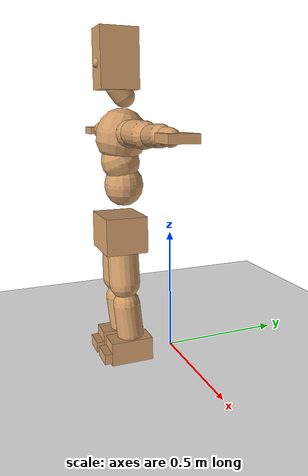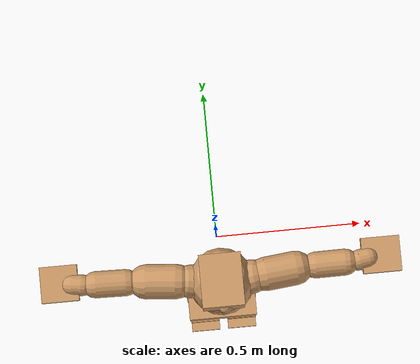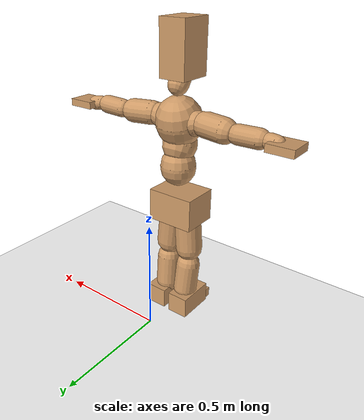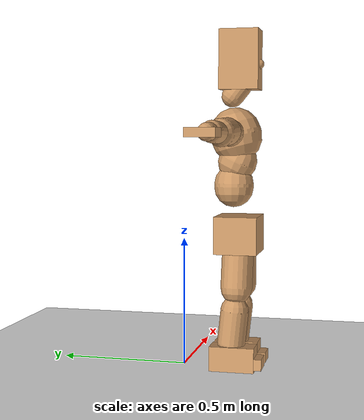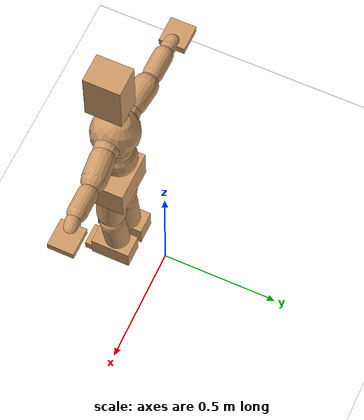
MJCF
<mujoco model="humanoid">
  <option integrator="implicitfast" />

  <visual>
    <global offwidth="1280" offheight="960" />
    <headlight active="1" ambient="0.34 0.34 0.34" diffuse="0.5 0.5 0.5" />
  </visual>

  <default>
    <joint damping="2" stiffness="2" armature="0.01" limited="true" solimplimit="0 .99 .01" />
    <geom condim="1" friction="0.7 0.005 0.0001" solimp=".99 .99 .003" solref="0.015 1" margin="0.001" rgba="0.8 0.6 .4 1" />
    <default class="smplcontact">
      <geom condim="3" friction="1. 0.005 0.0001" solref="0.015 1" solimp="0.98 0.98 0.001" priority="1" />
    </default>
    <default class="stiff_medium">
      <joint stiffness="10" />
    </default>
    <default class="stiff_medium_higher">
      <joint stiffness="50" />
    </default>
    <default class="stiff_high">
      <joint stiffness="100" />
    </default>
  </default>

  <asset>
    <texture type="skybox" builtin="gradient" rgb1="0.99 0.99 0.99" rgb2="0.608 0.828 0.892" width="100" />
    <texture builtin="flat" height="1278" mark="cross" markrgb="1 1 1" name="texgeom" random="0.01" rgb1="0.8 0.6 0.4" rgb2="0.8 0.6 0.4" type="cube" width="127" />
    <texture name="texplane" type="2d" builtin="checker" markrgb="1 1 1" rgb1="0.756 0.772 0.76" rgb2="0.6 0.6 0.6" width="100" height="100" />
    <material name="MatPlane" reflectance="0.5" texture="texplane" texrepeat="1 1" texuniform="true" />
    <material name="geom" texture="texgeom" texuniform="true" />
  </asset>

  <worldbody>
    <light name="tracking_light" pos="0 0 7" dir="0 0 -1" directional="true" cutoff="100" exponent="1" diffuse="1 1 1" specular="0.1 0.1 0.1" mode="trackcom" />
    <camera name="back" pos="0 3 2.4" xyaxes="-1 0 0 0 -1 2" mode="trackcom" />
    <camera name="side" pos="-3 0 2.4" xyaxes="0 -1 0 1 0 2" mode="trackcom" />
    <camera name="front_side" pos="-2.8 -2.8 0.8" xyaxes="0.5 -0.5 0 0.1 0.1 1" mode="trackcom" />
    <geom condim="3" name="floor" pos="0 0 0" rgba="1 1 1 1" size="100 100 .2" type="plane" material="MatPlane" />
    <body name="Pelvis" pos="-0.0018 -0.2233 0.536695" euler="90 0 0">
      <site name="Pelvis" size="0.01" />
      <freejoint name="Pelvis" />
      <geom type="box" pos="-0.0000 -0.0121 -0.0055" size="0.1069 0.0722 0.083" quat="1.0000 0.0000 0.0000 0.0000" density="3165.830099" name="Pelvis" />
      <body name="L_Hip" pos="0.038225 -0.05027 -0.00374">
        <joint name="L_Hip_x" type="hinge" pos="0 0 0" axis="1 0 0" stiffness="3.8448450000000003" range="-160.0 22.92" class="stiff_medium" damping="4.4892046838453" armature="0.002329579093676348"/>
        <joint name="L_Hip_y" type="hinge" pos="0 0 0" axis="0 1 0" stiffness="3.8941309183673467" range="-70.0 70.0" class="stiff_medium" damping="4.474611116630914" armature="0.005141620830116169"/>
        <joint name="L_Hip_z" type="hinge" pos="0 0 0" axis="0 0 1" stiffness="3.8899115306122445" range="-28.65 90.0" class="stiff_medium" damping="3.007292158377348" armature="0.0023249387690867248"/>
        <geom type="capsule" density="2040.816327" fromto="0.003795 -0.04125 -0.000495 0.01507 -0.16511 -0.00198" size="0.0615" name="L_Hip" />
        <body name="L_Knee" pos="0.018865 -0.20636 -0.002475">
          <joint name="L_Knee_x" type="hinge" pos="0 0 0" axis="1 0 0" range="-5.16 171.89" damping="2.6389822347590104" armature="0.002636412166748132" stiffness="0.8254858775510204"/>
          <joint name="L_Knee_y" type="hinge" pos="0 0 0" axis="0 1 0" range="-4.58 6.88" damping="3.8249964866329913" armature="0.005767402564678587" stiffness="0.7927419426834563"/>
          <joint name="L_Knee_z" type="hinge" pos="0 0 0" axis="0 0 1" range="-6.88 4.58" damping="2.6552280987004853" armature="0.002610997265955112" stiffness="0.8438150659013607"/>
          <geom type="capsule" density="1234.567901" fromto="-0.001485 -0.04378 -0.004785 -0.005995 -0.17512 -0.01925" size="0.0541" name="L_Knee" />
          <body name="L_Ankle" pos="-0.00748 -0.2189 -0.024035">
            <joint name="L_Ankle_x" type="hinge" pos="0 0 0" axis="1 0 0" range="-45.84 45.84" class="stiff_medium" damping="3.273596845617011" armature="0.005412341569511943" stiffness="5.499999999999999"/>
            <joint name="L_Ankle_y" type="hinge" pos="0 0 0" axis="0 1 0" range="-74.48 22.92" class="stiff_medium" damping="1.6624052515410668" armature="0.0055830125663662985" stiffness="5.499999999999999"/>
            <joint name="L_Ankle_z" type="hinge" pos="0 0 0" axis="0 0 1" range="-4.58 4.58" class="stiff_medium" damping="3.6423407751672325" armature="0.006700326425477696" stiffness="5.499999999999999"/>
            <geom type="box" pos="0.012815 -0.013145 0.01331" size="0.0483 0.0464 0.085" quat="1.0000 0.0000 0.0000 0.0000" density="449.071558" name="L_Ankle" class="smplcontact" />
            <body name="L_Toe" pos="0.01452 -0.03069 0.065615">
              <joint name="L_Toe_x" type="hinge" pos="0 0 0" axis="1 0 0" range="-91.67 22.92" armature="0.007348189317791214" damping="1.2714565072837005" stiffness="1.0999999999999999"/>
              <joint name="L_Toe_y" type="hinge" pos="0 0 0" axis="0 1 0" range="-4.58 4.58" armature="0.008131585292186893" damping="1.3375158930947761" stiffness="1.0999999999999999"/>
              <joint name="L_Toe_z" type="hinge" pos="0 0 0" axis="0 0 1" range="-4.58 4.58" armature="0.009715569786320193" damping="1.4619936227598402" stiffness="1.0999999999999999"/>
              <geom type="box" pos="-0.00165 0.003025 0.01364" size="0.0478 0.02 0.0496" quat="1.0000 0.0000 0.0000 0.0000" density="423.206892" name="L_Toe" class="smplcontact" />
            </body>
          </body>
        </body>
      </body>
      <body name="R_Hip" pos="-0.037235 -0.049775 -0.002365">
        <joint name="R_Hip_x" type="hinge" pos="0 0 0" axis="1 0 0" stiffness="3.8448450000000003" range="-160.0 22.92" class="stiff_medium" damping="4.4892046838453" armature="0.002329579093676348"/>
        <joint name="R_Hip_y" type="hinge" pos="0 0 0" axis="0 1 0" stiffness="3.8941309183673467" range="-70.0 70.0" class="stiff_medium" damping="4.474611116630914" armature="0.005141620830116169"/>
        <joint name="R_Hip_z" type="hinge" pos="0 0 0" axis="0 0 1" stiffness="3.8899115306122445" range="-90.0 28.65" class="stiff_medium" damping="3.007292158377348" armature="0.0023249387690867248"/>
        <geom type="capsule" density="2040.816327" fromto="-0.004235 -0.042075 -0.00099 -0.01683 -0.168355 -0.003905" size="0.0606" name="R_Hip" />
        <body name="R_Knee" pos="-0.021065 -0.21043 -0.004895">
          <joint name="R_Knee_x" type="hinge" pos="0 0 0" axis="1 0 0" range="-5.16 171.89" damping="2.6389822347590104" armature="0.002636412166748132" stiffness="0.8254858775510204"/>
          <joint name="R_Knee_y" type="hinge" pos="0 0 0" axis="0 1 0" range="-6.88 4.58" damping="3.8249964866329913" armature="0.005767402564678587" stiffness="0.7927419426834563"/>
          <joint name="R_Knee_z" type="hinge" pos="0 0 0" axis="0 0 1" range="-4.58 6.88" damping="2.6552280987004853" armature="0.002610997265955112" stiffness="0.8438150659013607"/>
          <geom type="capsule" density="1234.567901" fromto="0.00176 -0.043835 -0.004675 0.00693 -0.175285 -0.01859" size="0.0541" name="R_Knee" />
          <body name="R_Ankle" pos="0.00869 -0.21912 -0.023265">
            <joint name="R_Ankle_x" type="hinge" pos="0 0 0" axis="1 0 0" range="-45.84 45.84" class="stiff_medium" damping="3.273596845617011" armature="0.005412341569511943" stiffness="5.499999999999999"/>
            <joint name="R_Ankle_y" type="hinge" pos="0 0 0" axis="0 1 0" range="-22.92 74.48" class="stiff_medium" damping="1.6624052515410668" armature="0.0055830125663662985" stiffness="5.499999999999999"/>
            <joint name="R_Ankle_z" type="hinge" pos="0 0 0" axis="0 0 1" range="-4.58 4.58" class="stiff_medium" damping="3.6423407751672325" armature="0.006700326425477696" stiffness="5.499999999999999"/>
            <geom type="box" pos="-0.01166 -0.00957 0.01408" size="0.0483 0.0478 0.0865" quat="1.0000 0.0000 0.0000 0.0000" density="434.700981" name="R_Ankle" class="smplcontact" />
            <body name="R_Toe" pos="-0.01397 -0.026455 0.067815">
              <joint name="R_Toe_x" type="hinge" pos="0 0 0" axis="1 0 0" range="-91.67 22.92" armature="0.007348189317791214" damping="1.2714565072837005" stiffness="1.0999999999999999"/>
              <joint name="R_Toe_y" type="hinge" pos="0 0 0" axis="0 1 0" range="-4.58 4.58" armature="0.008131585292186893" damping="1.3375158930947761" stiffness="1.0999999999999999"/>
              <joint name="R_Toe_z" type="hinge" pos="0 0 0" axis="0 0 1" range="-4.58 4.58" armature="0.009715569786320193" damping="1.4619936227598402" stiffness="1.0999999999999999"/>
              <geom type="box" pos="0.00231 0.002475 0.012485" size="0.0479 0.0216 0.0493" quat="1.0000 0.0000 0.0000 0.0000" density="407.384095" name="R_Toe" class="smplcontact" />
            </body>
          </body>
        </body>
      </body>
      <body name="Torso" pos="-0.0025 0.109 -0.0267">
        <joint name="Torso_x" type="hinge" pos="0 0 0" axis="1 0 0" range="-25.78 57.3" class="stiff_medium" damping="13.033002694201473" armature="0.008529707903221754" stiffness="8.850591428571427"/>
        <joint name="Torso_y" type="hinge" pos="0 0 0" axis="0 1 0" range="-57.3 57.3" class="stiff_high" damping="10.593455725366077" armature="0.003117886410852223" stiffness="89.98187346938776"/>
        <joint name="Torso_z" type="hinge" pos="0 0 0" axis="0 0 1" range="-34.38 34.38" class="stiff_high" damping="15.65290421493559" armature="0.006670903974053502" stiffness="91.82166739130435"/>
        <geom type="capsule" density="2040.816327" fromto="0.0025 0.0608 0.0005 0.003 0.0743 0.0006" size="0.0769" name="Torso" />
        <body name="Spine" pos="0.0055 0.1352 0.0011">
          <joint name="Spine_x" type="hinge" pos="0 0 0" axis="1 0 0" stiffness="8.668092916666668" range="-25.78 57.3" class="stiff_medium" damping="12.799332930126958" armature="0.008399793230500953"/>
          <joint name="Spine_y" type="hinge" pos="0 0 0" axis="0 1 0" stiffness="8.803882608695652" range="-57.3 57.3" class="stiff_high" damping="4.158509374794197" armature="0.0030691714718519866"/>
          <joint name="Spine_z" type="hinge" pos="0 0 0" axis="0 0 1" stiffness="17.094745777777778" range="-34.38 34.38" class="stiff_high" damping="8.174908875734488" armature="0.005429635774519409"/>
          <geom type="capsule" density="2040.816327" fromto="0.0007 0.0238 0.0114 0.0008 0.0291 0.014" size="0.0755" name="Spine" />
          <body name="Chest" pos="0.0015 0.0529 0.0254">
            <joint name="Chest_x" type="hinge" pos="0 0 0" axis="1 0 0" stiffness="8.321563555555556" range="-25.78 57.3" class="stiff_medium" damping="12.501415588099173" armature="0.008347009985322682"/>
            <joint name="Chest_y" type="hinge" pos="0 0 0" axis="0 1 0" stiffness="7.107709062500001" range="-57.3 57.3" class="stiff_high" damping="3.7207337182807376" armature="0.003043319602134285"/>
            <joint name="Chest_z" type="hinge" pos="0 0 0" axis="0 0 1" stiffness="16.955583255813952" range="-34.38 34.38" class="stiff_high" damping="7.7291030796865465" armature="0.004893425362142385"/>
            <geom type="capsule" density="2040.816327" fromto="-0.0009 0.0682 -0.0173 -0.001 0.0833 -0.0212" size="0.1002" name="Chest" />
            <body name="Neck" pos="-0.0028 0.2139 -0.0429">
              <joint name="Neck_x" type="hinge" pos="0 0 0" axis="1 0 0" range="-28.65 57.3" class="stiff_medium_higher" damping="10.000000000000009" armature="0.010000000000000021" stiffness="50.0"/>
              <joint name="Neck_y" type="hinge" pos="0 0 0" axis="0 1 0" range="-40.11 40.11" class="stiff_medium_higher" damping="10.0" armature="0.01" stiffness="50.0"/>
              <joint name="Neck_z" type="hinge" pos="0 0 0" axis="0 0 1" range="-40.11 40.11" class="stiff_medium_higher" damping="9.999999999999998" armature="0.009999999999999998" stiffness="50.0"/>
              <geom type="capsule" density="1000" fromto="0.001 0.013 0.0103 0.0041 0.052 0.0411" size="0.0436" name="Neck" />
              <body name="Head" pos="0.0052 0.065 0.0513">
                <joint name="Head_x" type="hinge" pos="0 0 0" axis="1 0 0" range="-28.65 57.3" class="stiff_medium_higher" damping="2.000000000000005" armature="0.010000000000000049" stiffness="50.0"/>
                <joint name="Head_y" type="hinge" pos="0 0 0" axis="0 1 0" range="-40.11 40.11" class="stiff_medium_higher" damping="2.0" armature="0.01" stiffness="50.0"/>
                <joint name="Head_z" type="hinge" pos="0 0 0" axis="0 0 1" range="-40.11 40.11" class="stiff_medium_higher" damping="2.000000000000001" armature="0.010000000000000009" stiffness="50.0"/>
                <geom type="box" pos="-0.0042 0.0876 -0.0116" size="0.0606 0.1154 0.076" quat="1.0000 0.0000 0.0000 0.0000" density="1018.069894" name="Head" />
                <geom type="capsule" name="nose" size="0.02 0.01" pos="0 0.07 0.05" quat="1 0 0 0" mass="0" contype="0" conaffinity="0" />
              </body>
            </body>
            <body name="L_Thorax" pos="0.04728 0.07302 -0.02046">
              <joint name="L_Thorax_x" type="hinge" pos="0 0 0" axis="1 0 0" range="-10.89 4.58" class="stiff_medium_higher" damping="9.422378486615749" armature="0.004891954247567088" stiffness="22.685518877551026"/>
              <joint name="L_Thorax_y" type="hinge" pos="0 0 0" axis="0 1 0" range="-28.65 17.19" class="stiff_medium_higher" damping="7.1269625368313445" armature="0.002837019223865551" stiffness="22.379824999999997"/>
              <joint name="L_Thorax_z" type="hinge" pos="0 0 0" axis="0 0 1" range="-31.51 40.11" class="stiff_medium_higher" damping="7.125098806142248" armature="0.0028351076954015067" stiffness="22.383203061224492"/>
              <geom type="capsule" density="1000" fromto="0.01092 0.00366 -0.00108 0.04368 0.01464 -0.00426" size="0.0521" name="L_Thorax" />
              <body name="L_Shoulder" pos="0.0546 0.0183 -0.00534">
                <joint name="L_Shoulder_x" type="hinge" pos="0 0 0" axis="1 0 0" range="-97.4 97.4" class="stiff_medium" damping="3.0459299294114324" armature="0.005624379912182247" stiffness="4.58208"/>
                <joint name="L_Shoulder_y" type="hinge" pos="0 0 0" axis="0 1 0" range="-108.86 80.21" class="stiff_medium" damping="2.1612614426703196" armature="0.0028841969954109536" stiffness="4.498701632653061"/>
                <joint name="L_Shoulder_z" type="hinge" pos="0 0 0" axis="0 0 1" range="-97.4 85.94" class="stiff_medium" damping="2.1614166173229705" armature="0.0028814609097421572" stiffness="4.503620000000001"/>
                <geom type="capsule" density="1000" fromto="0.03114 -0.00156 -0.0033 0.12462 -0.00612 -0.0132" size="0.0517" name="L_Shoulder" />
                <body name="L_Elbow" pos="0.15576 -0.00768 -0.0165">
                  <joint name="L_Elbow_x" type="hinge" pos="0 0 0" axis="1 0 0" range="-17.19 4.58" damping="2.874578640438173" armature="0.006949922042669661" stiffness="0.9511706530612245"/>
                  <joint name="L_Elbow_y" type="hinge" pos="0 0 0" axis="0 1 0" range="-180.0 17.19" damping="1.925552810921087" armature="0.0031210824799741445" stiffness="0.9503763265306122"/>
                  <joint name="L_Elbow_z" type="hinge" pos="0 0 0" axis="0 0 1" range="-100.84 4.58" damping="1.9224833578346185" armature="0.0031067220005513907" stiffness="0.951727836734694"/>
                  <geom type="capsule" density="1000" fromto="0.02988 0.00108 -0.00012 0.11964 0.00432 -0.00054" size="0.0405" name="L_Elbow" />
                  <body name="L_Wrist" pos="0.14952 0.0054 -0.00072">
                    <joint name="L_Wrist_x" type="hinge" pos="0 0 0" axis="1 0 0" range="-180.0 22.92" armature="0.007694148983561405" damping="1.3087654319433288" stiffness="1.1130970816326529"/>
                    <joint name="L_Wrist_y" type="hinge" pos="0 0 0" axis="0 1 0" range="-17.19 17.19" armature="0.004175371060450671" damping="0.9585763805132095" stiffness="1.1003437346938774"/>
                    <joint name="L_Wrist_z" type="hinge" pos="0 0 0" axis="0 0 1" range="-22.92 22.92" armature="0.003969908434642842" damping="0.9368762271945053" stiffness="1.1054877959183673"/>
                    <geom type="capsule" density="1000" fromto="0.01008 -0.00096 -0.0018 0.04032 -0.0039 -0.0072" size="0.0318" name="L_Wrist" class="smplcontact" />
                    <body name="L_Hand" pos="0.0504 -0.00492 -0.00894">
                      <joint name="L_Hand_x" type="hinge" pos="0 0 0" axis="1 0 0" range="-17.19 17.19" armature="0.009721176572668043" damping="1.527443084844843" stiffness="1.2000000000000002"/>
                      <joint name="L_Hand_y" type="hinge" pos="0 0 0" axis="0 1 0" range="-51.57 51.57" armature="0.006628015324670781" damping="1.261238945609034" stiffness="1.2000000000000002"/>
                      <joint name="L_Hand_z" type="hinge" pos="0 0 0" axis="0 0 1" range="-91.67 91.67" armature="0.00580349093190332" damping="1.1801855039174125" stiffness="1.2000000000000002"/>
                      <geom type="box" pos="0.02958 0.0006 -0.00348" size="0.0585 0.0158 0.0538" quat="1.0000 0.0000 0.0000 0.0000" density="400.552564" name="L_Hand" class="smplcontact" />
                    </body>
                  </body>
                </body>
              </body>
            </body>
            <body name="R_Thorax" pos="-0.04908 0.07128 -0.02316">
              <joint name="R_Thorax_x" type="hinge" pos="0 0 0" axis="1 0 0" range="-10.89 4.58" class="stiff_medium_higher" damping="9.422378486615749" armature="0.004891954247567088" stiffness="22.685518877551026"/>
              <joint name="R_Thorax_y" type="hinge" pos="0 0 0" axis="0 1 0" range="-17.19 28.65" class="stiff_medium_higher" damping="7.1269625368313445" armature="0.002837019223865551" stiffness="22.379824999999997"/>
              <joint name="R_Thorax_z" type="hinge" pos="0 0 0" axis="0 0 1" range="-40.11 31.51" class="stiff_medium_higher" damping="7.125098806142248" armature="0.0028351076954015067" stiffness="22.383203061224492"/>
              <geom type="capsule" density="1000" fromto="-0.01152 0.0039 -0.00108 -0.04608 0.0156 -0.00438" size="0.0511" name="R_Thorax" />
              <body name="R_Shoulder" pos="-0.0576 0.01956 -0.00546">
                <joint name="R_Shoulder_x" type="hinge" pos="0 0 0" axis="1 0 0" range="-97.4 97.4" class="stiff_medium" damping="3.0459299294114324" armature="0.005624379912182247" stiffness="4.58208"/>
                <joint name="R_Shoulder_y" type="hinge" pos="0 0 0" axis="0 1 0" range="-80.21 108.86" class="stiff_medium" damping="2.1612614426703196" armature="0.0028841969954109536" stiffness="4.498701632653061"/>
                <joint name="R_Shoulder_z" type="hinge" pos="0 0 0" axis="0 0 1" range="-85.94 97.4" class="stiff_medium" damping="2.1614166173229705" armature="0.0028814609097421572" stiffness="4.503620000000001"/>
                <geom type="capsule" density="1000" fromto="-0.03042 -0.00162 -0.00258 -0.1218 -0.00642 -0.01026" size="0.0531" name="R_Shoulder" />
                <body name="R_Elbow" pos="-0.15222 -0.00798 -0.01284">
                  <joint name="R_Elbow_x" type="hinge" pos="0 0 0" axis="1 0 0" range="-17.19 4.58" damping="2.874578640438173" armature="0.006949922042669661" stiffness="0.9511706530612245"/>
                  <joint name="R_Elbow_y" type="hinge" pos="0 0 0" axis="0 1 0" range="-17.19 180.0" damping="1.925552810921087" armature="0.0031210824799741445" stiffness="0.9503763265306122"/>
                  <joint name="R_Elbow_z" type="hinge" pos="0 0 0" axis="0 0 1" range="-4.58 100.84" damping="1.9224833578346185" armature="0.0031067220005513907" stiffness="0.951727836734694"/>
                  <geom type="capsule" density="1000" fromto="-0.03066 0.00096 -0.00066 -0.12252 0.00372 -0.00264" size="0.0408" name="R_Elbow" />
                  <body name="R_Wrist" pos="-0.15318 0.00468 -0.00336">
                    <joint name="R_Wrist_x" type="hinge" pos="0 0 0" axis="1 0 0" range="-180.0 22.92" armature="0.007694148983561405" damping="1.3087654319433288" stiffness="1.1130970816326529"/>
                    <joint name="R_Wrist_y" type="hinge" pos="0 0 0" axis="0 1 0" range="-17.19 17.19" armature="0.004175371060450671" damping="0.9585763805132095" stiffness="1.1003437346938774"/>
                    <joint name="R_Wrist_z" type="hinge" pos="0 0 0" axis="0 0 1" range="-22.92 22.92" armature="0.003969908434642842" damping="0.9368762271945053" stiffness="1.1054877959183673"/>
                    <geom type="capsule" density="1000" fromto="-0.01014 -0.00072 -0.00126 -0.04062 -0.00294 -0.00498" size="0.0326" name="R_Wrist" class="smplcontact" />
                    <body name="R_Hand" pos="-0.05076 -0.00366 -0.00618">
                      <joint name="R_Hand_x" type="hinge" pos="0 0 0" axis="1 0 0" range="-17.19 17.19" armature="0.009721176572668043" damping="1.527443084844843" stiffness="1.2000000000000002"/>
                      <joint name="R_Hand_y" type="hinge" pos="0 0 0" axis="0 1 0" range="-51.57 51.57" armature="0.006628015324670781" damping="1.261238945609034" stiffness="1.2000000000000002"/>
                      <joint name="R_Hand_z" type="hinge" pos="0 0 0" axis="0 0 1" range="-91.67 91.67" armature="0.00580349093190332" damping="1.1801855039174125" stiffness="1.2000000000000002"/>
                      <geom type="box" pos="-0.02772 -0.00054 -0.00474" size="0.0569 0.0164 0.0546" quat="1.0000 0.0000 0.0000 0.0000" density="403.679611" name="R_Hand" class="smplcontact" />
                    </body>
                  </body>
                </body>
              </body>
            </body>
          </body>
        </body>
      </body>
    </body>
  </worldbody>
  <actuator>
    <general name="L_Hip_x" joint="L_Hip_x" biastype="affine" gainprm="110.47395602942699" biasprm="-82.78903286963619 -69.20721 -0.5985606245127068" ctrllimited="true" ctrlrange="-1 1" forcerange="-138.41442 138.41442" />
    <general name="L_Hip_y" joint="L_Hip_y" biastype="affine" gainprm="85.6364115968181" biasprm="0.0 -70.09435653061225 -0.8949222233261829" ctrllimited="true" ctrlrange="-1 1" forcerange="-140.1887130612245 140.1887130612245" />
    <general name="L_Hip_z" joint="L_Hip_z" biastype="affine" gainprm="72.49821999569515" biasprm="37.48643739347575 -70.0184075510204 -0.6014584316754696" ctrllimited="true" ctrlrange="-1 1" forcerange="-140.0368151020408 140.0368151020408" />
    <general name="L_Knee_x" joint="L_Knee_x" biastype="affine" gainprm="114.78772806322807" biasprm="108.09690991235253 -74.29372897959183 -0.6597455586897526" ctrllimited="true" ctrlrange="-1 1" forcerange="-148.58745795918367 148.58745795918367" />
    <general name="L_Knee_y" joint="L_Knee_y" biastype="affine" gainprm="7.1352030344314175" biasprm="1.432021551412937 -71.34677484151106 -0.9562491216582478" ctrllimited="true" ctrlrange="-1 1" forcerange="-142.69354968302213 142.69354968302213" />
    <general name="L_Knee_z" joint="L_Knee_z" biastype="affine" gainprm="7.594895002449052" biasprm="-1.5242808469138587 -75.94335593112247 -0.6638070246751213" ctrllimited="true" ctrlrange="-1 1" forcerange="-151.88671186224494 151.88671186224494" />
    <general name="L_Ankle_x" joint="L_Ankle_x" biastype="affine" gainprm="39.60291699115293" biasprm="0.0 -49.49999999999999 -1.0911989485390037" ctrllimited="true" ctrlrange="-1 1" forcerange="-98.99999999999999 98.99999999999999" />
    <general name="L_Ankle_y" joint="L_Ankle_y" biastype="affine" gainprm="42.0737796132013" biasprm="-22.27232111762484 -49.49999999999999 -1.1082701676940445" ctrllimited="true" ctrlrange="-1 1" forcerange="-98.99999999999999 98.99999999999999" />
    <general name="L_Ankle_z" joint="L_Ankle_z" biastype="affine" gainprm="3.9568359471963435" biasprm="0.0 -49.49999999999999 -1.2141135917224108" ctrllimited="true" ctrlrange="-1 1" forcerange="-98.99999999999999 98.99999999999999" />
    <general name="L_Toe_x" joint="L_Toe_x" biastype="affine" gainprm="39.599461239233975" biasprm="-23.758294442772804 -39.599999999999994 -0.5085826029134802" ctrllimited="true" ctrlrange="-1 1" forcerange="-79.19999999999999 79.19999999999999" />
    <general name="L_Toe_y" joint="L_Toe_y" biastype="affine" gainprm="3.165468757757075" biasprm="0.0 -39.599999999999994 -0.5350063572379105" ctrllimited="true" ctrlrange="-1 1" forcerange="-79.19999999999999 79.19999999999999" />
    <general name="L_Toe_z" joint="L_Toe_z" biastype="affine" gainprm="3.165468757757075" biasprm="0.0 -39.599999999999994 -0.5847974491039362" ctrllimited="true" ctrlrange="-1 1" forcerange="-79.19999999999999 79.19999999999999" />
    <general name="R_Hip_x" joint="R_Hip_x" biastype="affine" gainprm="110.47395602942699" biasprm="-82.78903286963619 -69.20721 -0.5985606245127068" ctrllimited="true" ctrlrange="-1 1" forcerange="-138.41442 138.41442" />
    <general name="R_Hip_y" joint="R_Hip_y" biastype="affine" gainprm="85.6364115968181" biasprm="0.0 -70.09435653061225 -0.8949222233261829" ctrllimited="true" ctrlrange="-1 1" forcerange="-140.1887130612245 140.1887130612245" />
    <general name="R_Hip_z" joint="R_Hip_z" biastype="affine" gainprm="72.49821999569515" biasprm="-37.48643739347575 -70.0184075510204 -0.6014584316754696" ctrllimited="true" ctrlrange="-1 1" forcerange="-140.0368151020408 140.0368151020408" />
    <general name="R_Knee_x" joint="R_Knee_x" biastype="affine" gainprm="114.78772806322807" biasprm="108.09690991235253 -74.29372897959183 -0.6597455586897526" ctrllimited="true" ctrlrange="-1 1" forcerange="-148.58745795918367 148.58745795918367" />
    <general name="R_Knee_y" joint="R_Knee_y" biastype="affine" gainprm="7.1352030344314175" biasprm="-1.432021551412937 -71.34677484151106 -0.9562491216582478" ctrllimited="true" ctrlrange="-1 1" forcerange="-142.69354968302213 142.69354968302213" />
    <general name="R_Knee_z" joint="R_Knee_z" biastype="affine" gainprm="7.594895002449052" biasprm="1.5242808469138587 -75.94335593112247 -0.6638070246751213" ctrllimited="true" ctrlrange="-1 1" forcerange="-151.88671186224494 151.88671186224494" />
    <general name="R_Ankle_x" joint="R_Ankle_x" biastype="affine" gainprm="39.60291699115293" biasprm="0.0 -49.49999999999999 -1.0911989485390037" ctrllimited="true" ctrlrange="-1 1" forcerange="-98.99999999999999 98.99999999999999" />
    <general name="R_Ankle_y" joint="R_Ankle_y" biastype="affine" gainprm="42.0737796132013" biasprm="22.27232111762484 -49.49999999999999 -1.1082701676940445" ctrllimited="true" ctrlrange="-1 1" forcerange="-98.99999999999999 98.99999999999999" />
    <general name="R_Ankle_z" joint="R_Ankle_z" biastype="affine" gainprm="3.9568359471963435" biasprm="0.0 -49.49999999999999 -1.2141135917224108" ctrllimited="true" ctrlrange="-1 1" forcerange="-98.99999999999999 98.99999999999999" />
    <general name="R_Toe_x" joint="R_Toe_x" biastype="affine" gainprm="39.599461239233975" biasprm="-23.758294442772804 -39.599999999999994 -0.5085826029134802" ctrllimited="true" ctrlrange="-1 1" forcerange="-79.19999999999999 79.19999999999999" />
    <general name="R_Toe_y" joint="R_Toe_y" biastype="affine" gainprm="3.165468757757075" biasprm="0.0 -39.599999999999994 -0.5350063572379105" ctrllimited="true" ctrlrange="-1 1" forcerange="-79.19999999999999 79.19999999999999" />
    <general name="R_Toe_z" joint="R_Toe_z" biastype="affine" gainprm="3.165468757757075" biasprm="0.0 -39.599999999999994 -0.5847974491039362" ctrllimited="true" ctrlrange="-1 1" forcerange="-79.19999999999999 79.19999999999999" />
    <general name="Torso_x" joint="Torso_x" biastype="affine" gainprm="154.00236641538075" biasprm="58.427474595724604 -212.41419428571422 -3.475467385120393" ctrllimited="true" ctrlrange="-1 1" forcerange="-318.62129142857134 318.62129142857134" />
    <general name="Torso_y" joint="Torso_y" biastype="affine" gainprm="215.97240398282364" biasprm="0.0 -215.95649632653064 -2.1186911450732153" ctrllimited="true" ctrlrange="-1 1" forcerange="-323.93474448979595 323.93474448979595" />
    <general name="Torso_z" joint="Torso_z" biastype="affine" gainprm="132.2329407886211" biasprm="0.0 -220.3720017391304 -3.130580842987118" ctrllimited="true" ctrlrange="-1 1" forcerange="-330.55800260869563 330.55800260869563" />
    <general name="Spine_x" joint="Spine_x" biastype="affine" gainprm="150.82684951038735" biasprm="57.22270458073432 -208.03423000000004 -3.4131554480338555" ctrllimited="true" ctrlrange="-1 1" forcerange="-312.051345 312.051345" />
    <general name="Spine_y" joint="Spine_y" biastype="affine" gainprm="211.30874675880537" biasprm="0.0 -211.29318260869564 -2.0792546873970985" ctrllimited="true" ctrlrange="-1 1" forcerange="-316.9397739130435 316.9397739130435" />
    <general name="Spine_z" joint="Spine_z" biastype="affine" gainprm="123.09123600403555" biasprm="0.0 -205.13694933333335 -2.7249696252448294" ctrllimited="true" ctrlrange="-1 1" forcerange="-307.705424 307.705424" />
    <general name="Chest_x" joint="Chest_x" biastype="affine" gainprm="144.79715736221698" biasprm="54.935079442189185 -199.71752533333336 -3.3337108234931128" ctrllimited="true" ctrlrange="-1 1" forcerange="-299.57628800000003 299.57628800000003" />
    <general name="Chest_y" joint="Chest_y" biastype="affine" gainprm="170.59758302997147" biasprm="0.0 -170.58501750000002 -1.8603668591403688" ctrllimited="true" ctrlrange="-1 1" forcerange="-255.87752625000002 255.87752625000002" />
    <general name="Chest_z" joint="Chest_z" biastype="affine" gainprm="122.08919203937866" biasprm="0.0 -203.46699906976744 -2.576367693228849" ctrllimited="true" ctrlrange="-1 1" forcerange="-305.20049860465116 305.20049860465116" />
    <general name="Neck_x" joint="Neck_x" biastype="affine" gainprm="27.00198885760427" biasprm="9.000662952534757 -36.0 -0.8000000000000007" ctrllimited="true" ctrlrange="-1 1" forcerange="-72.0 72.0" />
    <general name="Neck_y" joint="Neck_y" biastype="affine" gainprm="25.20185626709732" biasprm="0.0 -36.0 -0.8" ctrllimited="true" ctrlrange="-1 1" forcerange="-72.0 72.0" />
    <general name="Neck_z" joint="Neck_z" biastype="affine" gainprm="25.20185626709732" biasprm="0.0 -36.0 -0.7999999999999999" ctrllimited="true" ctrlrange="-1 1" forcerange="-72.0 72.0" />
    <general name="Head_x" joint="Head_x" biastype="affine" gainprm="18.001325905069514" biasprm="6.000441968356505 -24.0 -0.800000000000002" ctrllimited="true" ctrlrange="-1 1" forcerange="-48.0 48.0" />
    <general name="Head_y" joint="Head_y" biastype="affine" gainprm="16.801237511398213" biasprm="0.0 -24.0 -0.8" ctrllimited="true" ctrlrange="-1 1" forcerange="-48.0 48.0" />
    <general name="Head_z" joint="Head_z" biastype="affine" gainprm="16.801237511398213" biasprm="0.0 -24.0 -0.8000000000000004" ctrllimited="true" ctrlrange="-1 1" forcerange="-48.0 48.0" />
    <general name="L_Thorax_x" joint="L_Thorax_x" biastype="affine" gainprm="7.350174411130925" biasprm="-2.9980349408038887 -54.44524530612246 -0.7537902789292599" ctrllimited="true" ctrlrange="-1 1" forcerange="-108.89049061224492 108.89049061224492" />
    <general name="L_Thorax_y" joint="L_Thorax_y" biastype="affine" gainprm="21.486214587915857" biasprm="-5.371553646978964 -53.71158 -0.5701570029465076" ctrllimited="true" ctrlrange="-1 1" forcerange="-107.42316 107.42316" />
    <general name="L_Thorax_z" joint="L_Thorax_z" biastype="affine" gainprm="33.574933795160945" biasprm="4.031617294587882 -53.71968734693878 -0.5700079044913798" ctrllimited="true" ctrlrange="-1 1" forcerange="-107.43937469387755 107.43937469387755" />
    <general name="L_Shoulder_x" joint="L_Shoulder_x" biastype="affine" gainprm="37.38868830837478" biasprm="0.0 -21.993984 -0.812247981176382" ctrllimited="true" ctrlrange="-1 1" forcerange="-43.987968 43.987968" />
    <general name="L_Shoulder_y" joint="L_Shoulder_y" biastype="affine" gainprm="35.628572641718044" biasprm="-5.398839615937071 -21.593767836734692 -0.5763363847120853" ctrllimited="true" ctrlrange="-1 1" forcerange="-43.187535673469384 43.187535673469384" />
    <general name="L_Shoulder_z" joint="L_Shoulder_z" biastype="affine" gainprm="34.58657644176963" biasprm="-2.1618968366023825 -21.617376 -0.5763777646194588" ctrllimited="true" ctrlrange="-1 1" forcerange="-43.234752 43.234752" />
    <general name="L_Elbow_x" joint="L_Elbow_x" biastype="affine" gainprm="6.505291232200919" biasprm="-3.768108518054828 -34.24214351020408 -0.4599325824701077" ctrllimited="true" ctrlrange="-1 1" forcerange="-68.48428702040816 68.48428702040816" />
    <general name="L_Elbow_y" joint="L_Elbow_y" biastype="affine" gainprm="58.87492533623816" biasprm="-48.61010494443397 -34.21354775510204 -0.3080884497473739" ctrllimited="true" ctrlrange="-1 1" forcerange="-68.42709551020408 68.42709551020408" />
    <general name="L_Elbow_z" joint="L_Elbow_z" biastype="affine" gainprm="31.519959920641824" biasprm="-28.781173799667826 -34.26220212244898 -0.307597337253539" ctrllimited="true" ctrlrange="-1 1" forcerange="-68.52440424489797 68.52440424489797" />
    <general name="L_Wrist_x" joint="L_Wrist_x" biastype="affine" gainprm="11.826507731864885" biasprm="-9.154877954471399 -6.678582489795917 -0.5235061727773316" ctrllimited="true" ctrlrange="-1 1" forcerange="-13.357164979591834 13.357164979591834" />
    <general name="L_Wrist_y" joint="L_Wrist_y" biastype="affine" gainprm="1.9807646175825837" biasprm="0.0 -6.602062408163264 -0.3834305522052838" ctrllimited="true" ctrlrange="-1 1" forcerange="-13.204124816326528 13.204124816326528" />
    <general name="L_Wrist_z" joint="L_Wrist_z" biastype="affine" gainprm="2.653366146453801" biasprm="0.0 -6.632926775510204 -0.3747504908778021" ctrllimited="true" ctrlrange="-1 1" forcerange="-13.265853551020408 13.265853551020408" />
    <general name="L_Hand_x" joint="L_Hand_x" biastype="affine" gainprm="2.1601591086083425" biasprm="0.0 -7.200000000000001 -0.6109772339379372" ctrllimited="true" ctrlrange="-1 1" forcerange="-14.400000000000002 14.400000000000002" />
    <general name="L_Hand_y" joint="L_Hand_y" biastype="affine" gainprm="6.480477325825026" biasprm="0.0 -7.200000000000001 -0.5044955782436137" ctrllimited="true" ctrlrange="-1 1" forcerange="-14.400000000000002 14.400000000000002" />
    <general name="L_Hand_z" joint="L_Hand_z" biastype="affine" gainprm="11.519591942183055" biasprm="0.0 -7.200000000000001 -0.472074201566965" ctrllimited="true" ctrlrange="-1 1" forcerange="-14.400000000000002 14.400000000000002" />
    <general name="R_Thorax_x" joint="R_Thorax_x" biastype="affine" gainprm="7.350174411130925" biasprm="-2.9980349408038887 -54.44524530612246 -0.7537902789292599" ctrllimited="true" ctrlrange="-1 1" forcerange="-108.89049061224492 108.89049061224492" />
    <general name="R_Thorax_y" joint="R_Thorax_y" biastype="affine" gainprm="21.486214587915857" biasprm="5.371553646978961 -53.71158 -0.5701570029465076" ctrllimited="true" ctrlrange="-1 1" forcerange="-107.42316 107.42316" />
    <general name="R_Thorax_z" joint="R_Thorax_z" biastype="affine" gainprm="33.574933795160945" biasprm="-4.031617294587882 -53.71968734693878 -0.5700079044913798" ctrllimited="true" ctrlrange="-1 1" forcerange="-107.43937469387755 107.43937469387755" />
    <general name="R_Shoulder_x" joint="R_Shoulder_x" biastype="affine" gainprm="37.38868830837478" biasprm="0.0 -21.993984 -0.812247981176382" ctrllimited="true" ctrlrange="-1 1" forcerange="-43.987968 43.987968" />
    <general name="R_Shoulder_y" joint="R_Shoulder_y" biastype="affine" gainprm="35.628572641718044" biasprm="5.398839615937071 -21.593767836734692 -0.5763363847120853" ctrllimited="true" ctrlrange="-1 1" forcerange="-43.187535673469384 43.187535673469384" />
    <general name="R_Shoulder_z" joint="R_Shoulder_z" biastype="affine" gainprm="34.58657644176963" biasprm="2.161896836602378 -21.617376 -0.5763777646194588" ctrllimited="true" ctrlrange="-1 1" forcerange="-43.234752 43.234752" />
    <general name="R_Elbow_x" joint="R_Elbow_x" biastype="affine" gainprm="6.505291232200919" biasprm="-3.768108518054828 -34.24214351020408 -0.4599325824701077" ctrllimited="true" ctrlrange="-1 1" forcerange="-68.48428702040816 68.48428702040816" />
    <general name="R_Elbow_y" joint="R_Elbow_y" biastype="affine" gainprm="58.87492533623816" biasprm="48.61010494443397 -34.21354775510204 -0.3080884497473739" ctrllimited="true" ctrlrange="-1 1" forcerange="-68.42709551020408 68.42709551020408" />
    <general name="R_Elbow_z" joint="R_Elbow_z" biastype="affine" gainprm="31.519959920641824" biasprm="28.781173799667826 -34.26220212244898 -0.307597337253539" ctrllimited="true" ctrlrange="-1 1" forcerange="-68.52440424489797 68.52440424489797" />
    <general name="R_Wrist_x" joint="R_Wrist_x" biastype="affine" gainprm="11.826507731864885" biasprm="-9.154877954471399 -6.678582489795917 -0.5235061727773316" ctrllimited="true" ctrlrange="-1 1" forcerange="-13.357164979591834 13.357164979591834" />
    <general name="R_Wrist_y" joint="R_Wrist_y" biastype="affine" gainprm="1.9807646175825837" biasprm="0.0 -6.602062408163264 -0.3834305522052838" ctrllimited="true" ctrlrange="-1 1" forcerange="-13.204124816326528 13.204124816326528" />
    <general name="R_Wrist_z" joint="R_Wrist_z" biastype="affine" gainprm="2.653366146453801" biasprm="0.0 -6.632926775510204 -0.3747504908778021" ctrllimited="true" ctrlrange="-1 1" forcerange="-13.265853551020408 13.265853551020408" />
    <general name="R_Hand_x" joint="R_Hand_x" biastype="affine" gainprm="2.1601591086083425" biasprm="0.0 -7.200000000000001 -0.6109772339379372" ctrllimited="true" ctrlrange="-1 1" forcerange="-14.400000000000002 14.400000000000002" />
    <general name="R_Hand_y" joint="R_Hand_y" biastype="affine" gainprm="6.480477325825026" biasprm="0.0 -7.200000000000001 -0.5044955782436137" ctrllimited="true" ctrlrange="-1 1" forcerange="-14.400000000000002 14.400000000000002" />
    <general name="R_Hand_z" joint="R_Hand_z" biastype="affine" gainprm="11.519591942183055" biasprm="0.0 -7.200000000000001 -0.472074201566965" ctrllimited="true" ctrlrange="-1 1" forcerange="-14.400000000000002 14.400000000000002" />
  </actuator>
  <contact>
    <exclude body1="Torso" body2="Chest" />
    <exclude body1="Head" body2="Chest" />
    <exclude body1="R_Knee" body2="R_Toe" />
    <exclude body1="R_Knee" body2="L_Ankle" />
    <exclude body1="R_Knee" body2="L_Toe" />
    <exclude body1="L_Knee" body2="L_Toe" />
    <exclude body1="L_Knee" body2="R_Ankle" />
    <exclude body1="L_Knee" body2="R_Toe" />
    <exclude body1="L_Shoulder" body2="Chest" />
    <exclude body1="R_Shoulder" body2="Chest" />
  </contact>
  <sensor>
    <framelinvel name="sensor_Pelvis_framelinvel" objtype="xbody" objname="Pelvis" />
    <framelinvel name="sensor_L_Hip_framelinvel" objtype="xbody" objname="L_Hip" />
    <framelinvel name="sensor_L_Knee_framelinvel" objtype="xbody" objname="L_Knee" />
    <framelinvel name="sensor_L_Ankle_framelinvel" objtype="xbody" objname="L_Ankle" />
    <framelinvel name="sensor_L_Toe_framelinvel" objtype="xbody" objname="L_Toe" />
    <framelinvel name="sensor_R_Hip_framelinvel" objtype="xbody" objname="R_Hip" />
    <framelinvel name="sensor_R_Knee_framelinvel" objtype="xbody" objname="R_Knee" />
    <framelinvel name="sensor_R_Ankle_framelinvel" objtype="xbody" objname="R_Ankle" />
    <framelinvel name="sensor_R_Toe_framelinvel" objtype="xbody" objname="R_Toe" />
    <framelinvel name="sensor_Torso_framelinvel" objtype="xbody" objname="Torso" />
    <framelinvel name="sensor_Spine_framelinvel" objtype="xbody" objname="Spine" />
    <framelinvel name="sensor_Chest_framelinvel" objtype="xbody" objname="Chest" />
    <framelinvel name="sensor_Neck_framelinvel" objtype="xbody" objname="Neck" />
    <framelinvel name="sensor_Head_framelinvel" objtype="xbody" objname="Head" />
    <framelinvel name="sensor_L_Thorax_framelinvel" objtype="xbody" objname="L_Thorax" />
    <framelinvel name="sensor_L_Shoulder_framelinvel" objtype="xbody" objname="L_Shoulder" />
    <framelinvel name="sensor_L_Elbow_framelinvel" objtype="xbody" objname="L_Elbow" />
    <framelinvel name="sensor_L_Wrist_framelinvel" objtype="xbody" objname="L_Wrist" />
    <framelinvel name="sensor_L_Hand_framelinvel" objtype="xbody" objname="L_Hand" />
    <framelinvel name="sensor_R_Thorax_framelinvel" objtype="xbody" objname="R_Thorax" />
    <framelinvel name="sensor_R_Shoulder_framelinvel" objtype="xbody" objname="R_Shoulder" />
    <framelinvel name="sensor_R_Elbow_framelinvel" objtype="xbody" objname="R_Elbow" />
    <framelinvel name="sensor_R_Wrist_framelinvel" objtype="xbody" objname="R_Wrist" />
    <framelinvel name="sensor_R_Hand_framelinvel" objtype="xbody" objname="R_Hand" />
    <frameangvel name="sensor_Pelvis_frameangvel" objtype="xbody" objname="Pelvis" />
    <frameangvel name="sensor_L_Hip_frameangvel" objtype="xbody" objname="L_Hip" />
    <frameangvel name="sensor_L_Knee_frameangvel" objtype="xbody" objname="L_Knee" />
    <frameangvel name="sensor_L_Ankle_frameangvel" objtype="xbody" objname="L_Ankle" />
    <frameangvel name="sensor_L_Toe_frameangvel" objtype="xbody" objname="L_Toe" />
    <frameangvel name="sensor_R_Hip_frameangvel" objtype="xbody" objname="R_Hip" />
    <frameangvel name="sensor_R_Knee_frameangvel" objtype="xbody" objname="R_Knee" />
    <frameangvel name="sensor_R_Ankle_frameangvel" objtype="xbody" objname="R_Ankle" />
    <frameangvel name="sensor_R_Toe_frameangvel" objtype="xbody" objname="R_Toe" />
    <frameangvel name="sensor_Torso_frameangvel" objtype="xbody" objname="Torso" />
    <frameangvel name="sensor_Spine_frameangvel" objtype="xbody" objname="Spine" />
    <frameangvel name="sensor_Chest_frameangvel" objtype="xbody" objname="Chest" />
    <frameangvel name="sensor_Neck_frameangvel" objtype="xbody" objname="Neck" />
    <frameangvel name="sensor_Head_frameangvel" objtype="xbody" objname="Head" />
    <frameangvel name="sensor_L_Thorax_frameangvel" objtype="xbody" objname="L_Thorax" />
    <frameangvel name="sensor_L_Shoulder_frameangvel" objtype="xbody" objname="L_Shoulder" />
    <frameangvel name="sensor_L_Elbow_frameangvel" objtype="xbody" objname="L_Elbow" />
    <frameangvel name="sensor_L_Wrist_frameangvel" objtype="xbody" objname="L_Wrist" />
    <frameangvel name="sensor_L_Hand_frameangvel" objtype="xbody" objname="L_Hand" />
    <frameangvel name="sensor_R_Thorax_frameangvel" objtype="xbody" objname="R_Thorax" />
    <frameangvel name="sensor_R_Shoulder_frameangvel" objtype="xbody" objname="R_Shoulder" />
    <frameangvel name="sensor_R_Elbow_frameangvel" objtype="xbody" objname="R_Elbow" />
    <frameangvel name="sensor_R_Wrist_frameangvel" objtype="xbody" objname="R_Wrist" />
    <frameangvel name="sensor_R_Hand_frameangvel" objtype="xbody" objname="R_Hand" />
    <subtreelinvel name="Chest_subtreelinvel" body="Chest" />
    <gyro name="Pelvis_gyro" site="Pelvis" />
  </sensor>
</mujoco>
